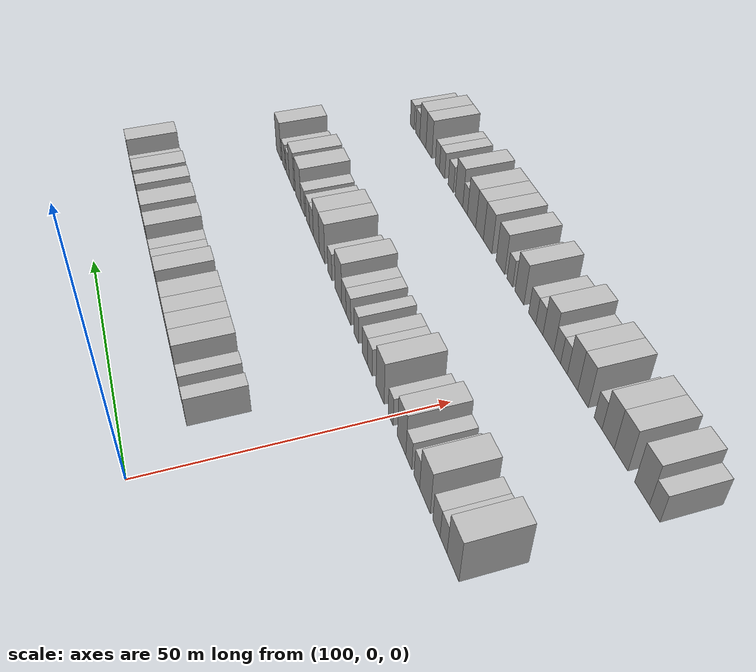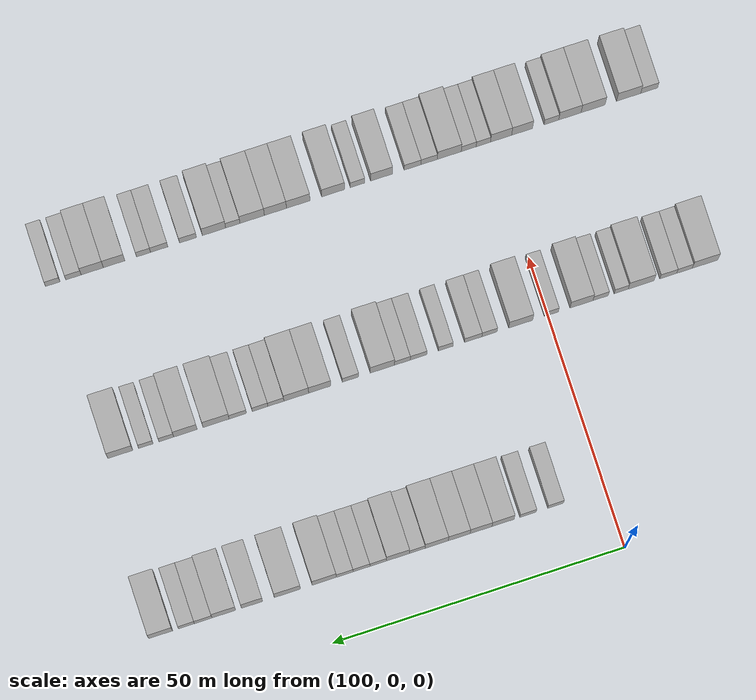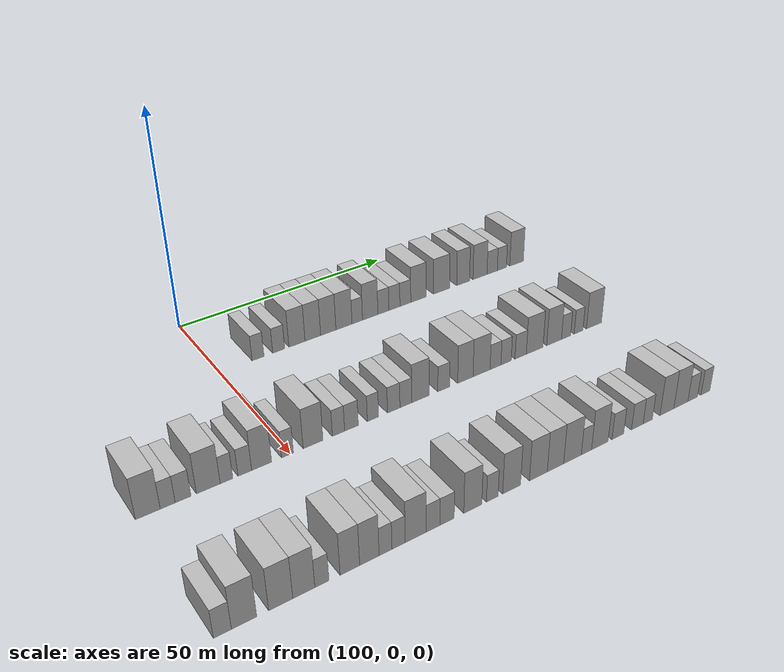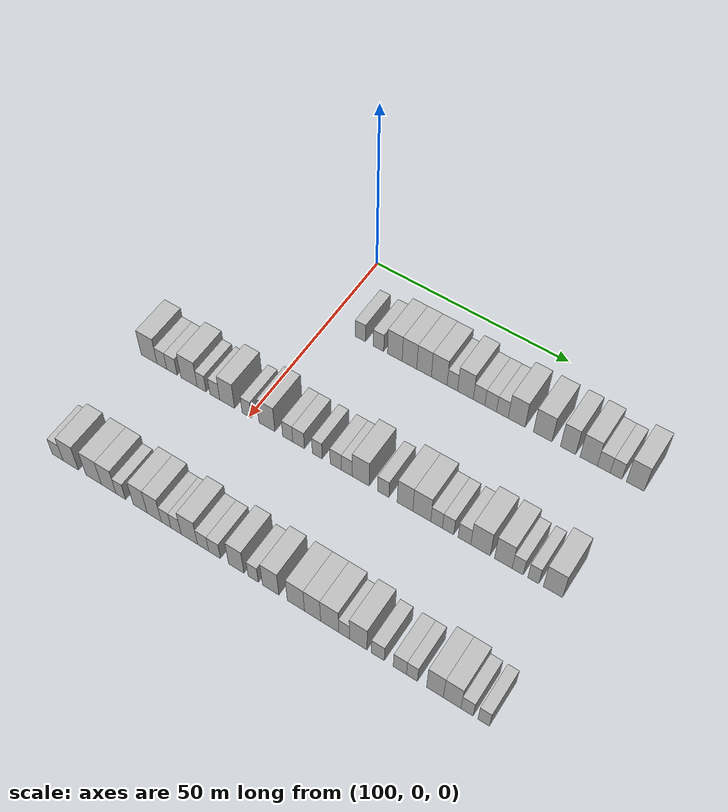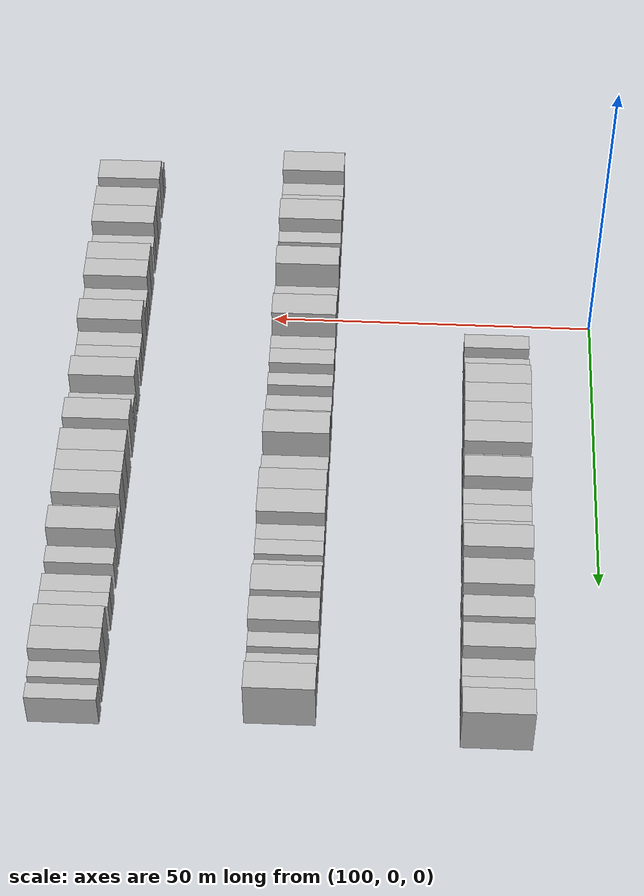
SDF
<sdf version="1.6">
 <world name="default">
  <model name="building_807">
   <static>1</static>
   <pose>115.0000 8.5581 0 0.000000 0.000000 0.000000</pose>
   <link name="link">
    <pose>0 0 3.00 0 0 0</pose>
    <collision name="collision"><geometry><box><size>10.0000 2.7011 6.0000</size></box></geometry></collision>
    <visual name="visual">
     <cast_shadows>0</cast_shadows>
     <geometry><box><size>10.0000 2.7011 6.0000</size></box></geometry>
     <material>
      <script>
       <uri>model://HANNAS_wall/materials/scripts</uri>
       <uri>model://HANNAS_wall/materials/textures</uri>
       <name>vrc/HANNAS_wall</name>
      </script>
     </material>
    </visual>
   </link>
  </model>
  <model name="building_808">
   <static>1</static>
   <pose>115.0000 13.2922 0 0.000000 0.000000 0.000000</pose>
   <link name="link">
    <pose>0 0 3.00 0 0 0</pose>
    <collision name="collision"><geometry><box><size>10.0000 2.7671 6.0000</size></box></geometry></collision>
    <visual name="visual">
     <cast_shadows>0</cast_shadows>
     <geometry><box><size>10.0000 2.7671 6.0000</size></box></geometry>
     <material>
      <script>
       <uri>model://HANNAS_wall/materials/scripts</uri>
       <uri>model://HANNAS_wall/materials/textures</uri>
       <name>vrc/HANNAS_wall</name>
      </script>
     </material>
    </visual>
   </link>
  </model>
  <model name="building_809">
   <static>1</static>
   <pose>115.0000 17.5745 0 0.000000 0.000000 0.000000</pose>
   <link name="link">
    <pose>0 0 4.50 0 0 0</pose>
    <collision name="collision"><geometry><box><size>10.0000 3.7975 9.0000</size></box></geometry></collision>
    <visual name="visual">
     <cast_shadows>0</cast_shadows>
     <geometry><box><size>10.0000 3.7975 9.0000</size></box></geometry>
     <material>
      <script>
       <uri>model://HANNAS_wall/materials/scripts</uri>
       <uri>model://HANNAS_wall/materials/textures</uri>
       <name>vrc/HANNAS_wall</name>
      </script>
     </material>
    </visual>
   </link>
  </model>
  <model name="building_810">
   <static>1</static>
   <pose>115.0000 21.3480 0 0.000000 0.000000 0.000000</pose>
   <link name="link">
    <pose>0 0 4.50 0 0 0</pose>
    <collision name="collision"><geometry><box><size>10.0000 3.7495 9.0000</size></box></geometry></collision>
    <visual name="visual">
     <cast_shadows>0</cast_shadows>
     <geometry><box><size>10.0000 3.7495 9.0000</size></box></geometry>
     <material>
      <script>
       <uri>model://HANNAS_wall/materials/scripts</uri>
       <uri>model://HANNAS_wall/materials/textures</uri>
       <name>vrc/HANNAS_wall</name>
      </script>
     </material>
    </visual>
   </link>
  </model>
  <model name="building_811">
   <static>1</static>
   <pose>115.0000 25.0889 0 0.000000 0.000000 0.000000</pose>
   <link name="link">
    <pose>0 0 4.50 0 0 0</pose>
    <collision name="collision"><geometry><box><size>10.0000 3.7324 9.0000</size></box></geometry></collision>
    <visual name="visual">
     <cast_shadows>0</cast_shadows>
     <geometry><box><size>10.0000 3.7324 9.0000</size></box></geometry>
     <material>
      <script>
       <uri>model://HANNAS_wall/materials/scripts</uri>
       <uri>model://HANNAS_wall/materials/textures</uri>
       <name>vrc/HANNAS_wall</name>
      </script>
     </material>
    </visual>
   </link>
  </model>
  <model name="building_812">
   <static>1</static>
   <pose>115.0000 28.9467 0 0.000000 0.000000 0.000000</pose>
   <link name="link">
    <pose>0 0 4.50 0 0 0</pose>
    <collision name="collision"><geometry><box><size>10.0000 3.9832 9.0000</size></box></geometry></collision>
    <visual name="visual">
     <cast_shadows>0</cast_shadows>
     <geometry><box><size>10.0000 3.9832 9.0000</size></box></geometry>
     <material>
      <script>
       <uri>model://HANNAS_wall/materials/scripts</uri>
       <uri>model://HANNAS_wall/materials/textures</uri>
       <name>vrc/HANNAS_wall</name>
      </script>
     </material>
    </visual>
   </link>
  </model>
  <model name="building_813">
   <static>1</static>
   <pose>115.0000 32.2671 0 0.000000 0.000000 0.000000</pose>
   <link name="link">
    <pose>0 0 3.00 0 0 0</pose>
    <collision name="collision"><geometry><box><size>10.0000 2.6576 6.0000</size></box></geometry></collision>
    <visual name="visual">
     <cast_shadows>0</cast_shadows>
     <geometry><box><size>10.0000 2.6576 6.0000</size></box></geometry>
     <material>
      <script>
       <uri>model://HANNAS_wall/materials/scripts</uri>
       <uri>model://HANNAS_wall/materials/textures</uri>
       <name>vrc/HANNAS_wall</name>
      </script>
     </material>
    </visual>
   </link>
  </model>
  <model name="building_814">
   <static>1</static>
   <pose>115.0000 35.5554 0 0.000000 0.000000 0.000000</pose>
   <link name="link">
    <pose>0 0 4.50 0 0 0</pose>
    <collision name="collision"><geometry><box><size>10.0000 3.9189 9.0000</size></box></geometry></collision>
    <visual name="visual">
     <cast_shadows>0</cast_shadows>
     <geometry><box><size>10.0000 3.9189 9.0000</size></box></geometry>
     <material>
      <script>
       <uri>model://HANNAS_wall/materials/scripts</uri>
       <uri>model://HANNAS_wall/materials/textures</uri>
       <name>vrc/HANNAS_wall</name>
      </script>
     </material>
    </visual>
   </link>
  </model>
  <model name="building_815">
   <static>1</static>
   <pose>115.0000 38.9462 0 0.000000 0.000000 0.000000</pose>
   <link name="link">
    <pose>0 0 3.00 0 0 0</pose>
    <collision name="collision"><geometry><box><size>10.0000 2.8628 6.0000</size></box></geometry></collision>
    <visual name="visual">
     <cast_shadows>0</cast_shadows>
     <geometry><box><size>10.0000 2.8628 6.0000</size></box></geometry>
     <material>
      <script>
       <uri>model://HANNAS_wall/materials/scripts</uri>
       <uri>model://HANNAS_wall/materials/textures</uri>
       <name>vrc/HANNAS_wall</name>
      </script>
     </material>
    </visual>
   </link>
  </model>
  <model name="building_816">
   <static>1</static>
   <pose>115.0000 41.8180 0 0.000000 0.000000 0.000000</pose>
   <link name="link">
    <pose>0 0 3.00 0 0 0</pose>
    <collision name="collision"><geometry><box><size>10.0000 2.8807 6.0000</size></box></geometry></collision>
    <visual name="visual">
     <cast_shadows>0</cast_shadows>
     <geometry><box><size>10.0000 2.8807 6.0000</size></box></geometry>
     <material>
      <script>
       <uri>model://HANNAS_wall/materials/scripts</uri>
       <uri>model://HANNAS_wall/materials/textures</uri>
       <name>vrc/HANNAS_wall</name>
      </script>
     </material>
    </visual>
   </link>
  </model>
  <model name="building_817">
   <static>1</static>
   <pose>115.0000 44.6970 0 0.000000 0.000000 0.000000</pose>
   <link name="link">
    <pose>0 0 3.00 0 0 0</pose>
    <collision name="collision"><geometry><box><size>10.0000 2.8773 6.0000</size></box></geometry></collision>
    <visual name="visual">
     <cast_shadows>0</cast_shadows>
     <geometry><box><size>10.0000 2.8773 6.0000</size></box></geometry>
     <material>
      <script>
       <uri>model://HANNAS_wall/materials/scripts</uri>
       <uri>model://HANNAS_wall/materials/textures</uri>
       <name>vrc/HANNAS_wall</name>
      </script>
     </material>
    </visual>
   </link>
  </model>
  <model name="building_818">
   <static>1</static>
   <pose>115.0000 48.1887 0 0.000000 0.000000 0.000000</pose>
   <link name="link">
    <pose>0 0 4.50 0 0 0</pose>
    <collision name="collision"><geometry><box><size>10.0000 4.1061 9.0000</size></box></geometry></collision>
    <visual name="visual">
     <cast_shadows>0</cast_shadows>
     <geometry><box><size>10.0000 4.1061 9.0000</size></box></geometry>
     <material>
      <script>
       <uri>model://HANNAS_wall/materials/scripts</uri>
       <uri>model://HANNAS_wall/materials/textures</uri>
       <name>vrc/HANNAS_wall</name>
      </script>
     </material>
    </visual>
   </link>
  </model>
  <model name="building_819">
   <static>1</static>
   <pose>115.0000 54.4717 0 0.000000 0.000000 0.000000</pose>
   <link name="link">
    <pose>0 0 4.50 0 0 0</pose>
    <collision name="collision"><geometry><box><size>10.0000 4.4599 9.0000</size></box></geometry></collision>
    <visual name="visual">
     <cast_shadows>0</cast_shadows>
     <geometry><box><size>10.0000 4.4599 9.0000</size></box></geometry>
     <material>
      <script>
       <uri>model://HANNAS_wall/materials/scripts</uri>
       <uri>model://HANNAS_wall/materials/textures</uri>
       <name>vrc/HANNAS_wall</name>
      </script>
     </material>
    </visual>
   </link>
  </model>
  <model name="building_820">
   <static>1</static>
   <pose>115.0000 60.5067 0 0.000000 0.000000 0.000000</pose>
   <link name="link">
    <pose>0 0 4.50 0 0 0</pose>
    <collision name="collision"><geometry><box><size>10.0000 3.6101 9.0000</size></box></geometry></collision>
    <visual name="visual">
     <cast_shadows>0</cast_shadows>
     <geometry><box><size>10.0000 3.6101 9.0000</size></box></geometry>
     <material>
      <script>
       <uri>model://HANNAS_wall/materials/scripts</uri>
       <uri>model://HANNAS_wall/materials/textures</uri>
       <name>vrc/HANNAS_wall</name>
      </script>
     </material>
    </visual>
   </link>
  </model>
  <model name="building_821">
   <static>1</static>
   <pose>115.0000 65.3345 0 0.000000 0.000000 0.000000</pose>
   <link name="link">
    <pose>0 0 4.50 0 0 0</pose>
    <collision name="collision"><geometry><box><size>10.0000 4.0454 9.0000</size></box></geometry></collision>
    <visual name="visual">
     <cast_shadows>0</cast_shadows>
     <geometry><box><size>10.0000 4.0454 9.0000</size></box></geometry>
     <material>
      <script>
       <uri>model://HANNAS_wall/materials/scripts</uri>
       <uri>model://HANNAS_wall/materials/textures</uri>
       <name>vrc/HANNAS_wall</name>
      </script>
     </material>
    </visual>
   </link>
  </model>
  <model name="building_822">
   <static>1</static>
   <pose>115.0000 68.8551 0 0.000000 0.000000 0.000000</pose>
   <link name="link">
    <pose>0 0 3.00 0 0 0</pose>
    <collision name="collision"><geometry><box><size>10.0000 2.9959 6.0000</size></box></geometry></collision>
    <visual name="visual">
     <cast_shadows>0</cast_shadows>
     <geometry><box><size>10.0000 2.9959 6.0000</size></box></geometry>
     <material>
      <script>
       <uri>model://HANNAS_wall/materials/scripts</uri>
       <uri>model://HANNAS_wall/materials/textures</uri>
       <name>vrc/HANNAS_wall</name>
      </script>
     </material>
    </visual>
   </link>
  </model>
  <model name="building_823">
   <static>1</static>
   <pose>115.0000 71.7139 0 0.000000 0.000000 0.000000</pose>
   <link name="link">
    <pose>0 0 3.00 0 0 0</pose>
    <collision name="collision"><geometry><box><size>10.0000 2.7216 6.0000</size></box></geometry></collision>
    <visual name="visual">
     <cast_shadows>0</cast_shadows>
     <geometry><box><size>10.0000 2.7216 6.0000</size></box></geometry>
     <material>
      <script>
       <uri>model://HANNAS_wall/materials/scripts</uri>
       <uri>model://HANNAS_wall/materials/textures</uri>
       <name>vrc/HANNAS_wall</name>
      </script>
     </material>
    </visual>
   </link>
  </model>
  <model name="building_824">
   <static>1</static>
   <pose>115.0000 76.1081 0 0.000000 0.000000 0.000000</pose>
   <link name="link">
    <pose>0 0 4.50 0 0 0</pose>
    <collision name="collision"><geometry><box><size>10.0000 4.0670 9.0000</size></box></geometry></collision>
    <visual name="visual">
     <cast_shadows>0</cast_shadows>
     <geometry><box><size>10.0000 4.0670 9.0000</size></box></geometry>
     <material>
      <script>
       <uri>model://HANNAS_wall/materials/scripts</uri>
       <uri>model://HANNAS_wall/materials/textures</uri>
       <name>vrc/HANNAS_wall</name>
      </script>
     </material>
    </visual>
   </link>
  </model>
  <model name="building_1024">
   <static>1</static>
   <pose>145.0000 -27.0491 0 0.000000 0.000000 0.000000</pose>
   <link name="link">
    <pose>0 0 4.50 0 0 0</pose>
    <collision name="collision"><geometry><box><size>10.0000 4.4079 9.0000</size></box></geometry></collision>
    <visual name="visual">
     <cast_shadows>0</cast_shadows>
     <geometry><box><size>10.0000 4.4079 9.0000</size></box></geometry>
     <material>
      <script>
       <uri>model://HANNAS_wall/materials/scripts</uri>
       <uri>model://HANNAS_wall/materials/textures</uri>
       <name>vrc/HANNAS_wall</name>
      </script>
     </material>
    </visual>
   </link>
  </model>
  <model name="building_1025">
   <static>1</static>
   <pose>145.0000 -23.5038 0 0.000000 0.000000 0.000000</pose>
   <link name="link">
    <pose>0 0 3.00 0 0 0</pose>
    <collision name="collision"><geometry><box><size>10.0000 2.6828 6.0000</size></box></geometry></collision>
    <visual name="visual">
     <cast_shadows>0</cast_shadows>
     <geometry><box><size>10.0000 2.6828 6.0000</size></box></geometry>
     <material>
      <script>
       <uri>model://HANNAS_wall/materials/scripts</uri>
       <uri>model://HANNAS_wall/materials/textures</uri>
       <name>vrc/HANNAS_wall</name>
      </script>
     </material>
    </visual>
   </link>
  </model>
  <model name="building_1026">
   <static>1</static>
   <pose>145.0000 -20.7197 0 0.000000 0.000000 0.000000</pose>
   <link name="link">
    <pose>0 0 3.00 0 0 0</pose>
    <collision name="collision"><geometry><box><size>10.0000 2.8853 6.0000</size></box></geometry></collision>
    <visual name="visual">
     <cast_shadows>0</cast_shadows>
     <geometry><box><size>10.0000 2.8853 6.0000</size></box></geometry>
     <material>
      <script>
       <uri>model://HANNAS_wall/materials/scripts</uri>
       <uri>model://HANNAS_wall/materials/textures</uri>
       <name>vrc/HANNAS_wall</name>
      </script>
     </material>
    </visual>
   </link>
  </model>
  <model name="building_1027">
   <static>1</static>
   <pose>145.0000 -16.0485 0 0.000000 0.000000 0.000000</pose>
   <link name="link">
    <pose>0 0 4.50 0 0 0</pose>
    <collision name="collision"><geometry><box><size>10.0000 4.4572 9.0000</size></box></geometry></collision>
    <visual name="visual">
     <cast_shadows>0</cast_shadows>
     <geometry><box><size>10.0000 4.4572 9.0000</size></box></geometry>
     <material>
      <script>
       <uri>model://HANNAS_wall/materials/scripts</uri>
       <uri>model://HANNAS_wall/materials/textures</uri>
       <name>vrc/HANNAS_wall</name>
      </script>
     </material>
    </visual>
   </link>
  </model>
  <model name="building_1028">
   <static>1</static>
   <pose>145.0000 -12.6143 0 0.000000 0.000000 0.000000</pose>
   <link name="link">
    <pose>0 0 3.00 0 0 0</pose>
    <collision name="collision"><geometry><box><size>10.0000 2.4112 6.0000</size></box></geometry></collision>
    <visual name="visual">
     <cast_shadows>0</cast_shadows>
     <geometry><box><size>10.0000 2.4112 6.0000</size></box></geometry>
     <material>
      <script>
       <uri>model://HANNAS_wall/materials/scripts</uri>
       <uri>model://HANNAS_wall/materials/textures</uri>
       <name>vrc/HANNAS_wall</name>
      </script>
     </material>
    </visual>
   </link>
  </model>
  <model name="building_1029">
   <static>1</static>
   <pose>145.0000 -9.0835 0 0.000000 0.000000 0.000000</pose>
   <link name="link">
    <pose>0 0 3.00 0 0 0</pose>
    <collision name="collision"><geometry><box><size>10.0000 2.6505 6.0000</size></box></geometry></collision>
    <visual name="visual">
     <cast_shadows>0</cast_shadows>
     <geometry><box><size>10.0000 2.6505 6.0000</size></box></geometry>
     <material>
      <script>
       <uri>model://HANNAS_wall/materials/scripts</uri>
       <uri>model://HANNAS_wall/materials/textures</uri>
       <name>vrc/HANNAS_wall</name>
      </script>
     </material>
    </visual>
   </link>
  </model>
  <model name="building_1030">
   <static>1</static>
   <pose>145.0000 -5.7899 0 0.000000 0.000000 0.000000</pose>
   <link name="link">
    <pose>0 0 4.50 0 0 0</pose>
    <collision name="collision"><geometry><box><size>10.0000 3.9365 9.0000</size></box></geometry></collision>
    <visual name="visual">
     <cast_shadows>0</cast_shadows>
     <geometry><box><size>10.0000 3.9365 9.0000</size></box></geometry>
     <material>
      <script>
       <uri>model://HANNAS_wall/materials/scripts</uri>
       <uri>model://HANNAS_wall/materials/textures</uri>
       <name>vrc/HANNAS_wall</name>
      </script>
     </material>
    </visual>
   </link>
  </model>
  <model name="building_1031">
   <static>1</static>
   <pose>145.0000 -0.6128 0 0.000000 0.000000 0.000000</pose>
   <link name="link">
    <pose>0 0 3.00 0 0 0</pose>
    <collision name="collision"><geometry><box><size>10.0000 2.4178 6.0000</size></box></geometry></collision>
    <visual name="visual">
     <cast_shadows>0</cast_shadows>
     <geometry><box><size>10.0000 2.4178 6.0000</size></box></geometry>
     <material>
      <script>
       <uri>model://HANNAS_wall/materials/scripts</uri>
       <uri>model://HANNAS_wall/materials/textures</uri>
       <name>vrc/HANNAS_wall</name>
      </script>
     </material>
    </visual>
   </link>
  </model>
  <model name="building_1032">
   <static>1</static>
   <pose>145.0000 4.6598 0 0.000000 0.000000 0.000000</pose>
   <link name="link">
    <pose>0 0 4.50 0 0 0</pose>
    <collision name="collision"><geometry><box><size>10.0000 4.1273 9.0000</size></box></geometry></collision>
    <visual name="visual">
     <cast_shadows>0</cast_shadows>
     <geometry><box><size>10.0000 4.1273 9.0000</size></box></geometry>
     <material>
      <script>
       <uri>model://HANNAS_wall/materials/scripts</uri>
       <uri>model://HANNAS_wall/materials/textures</uri>
       <name>vrc/HANNAS_wall</name>
      </script>
     </material>
    </visual>
   </link>
  </model>
  <model name="building_1033">
   <static>1</static>
   <pose>145.0000 10.0301 0 0.000000 0.000000 0.000000</pose>
   <link name="link">
    <pose>0 0 3.00 0 0 0</pose>
    <collision name="collision"><geometry><box><size>10.0000 2.6133 6.0000</size></box></geometry></collision>
    <visual name="visual">
     <cast_shadows>0</cast_shadows>
     <geometry><box><size>10.0000 2.6133 6.0000</size></box></geometry>
     <material>
      <script>
       <uri>model://HANNAS_wall/materials/scripts</uri>
       <uri>model://HANNAS_wall/materials/textures</uri>
       <name>vrc/HANNAS_wall</name>
      </script>
     </material>
    </visual>
   </link>
  </model>
  <model name="building_1034">
   <static>1</static>
   <pose>145.0000 12.8231 0 0.000000 0.000000 0.000000</pose>
   <link name="link">
    <pose>0 0 3.00 0 0 0</pose>
    <collision name="collision"><geometry><box><size>10.0000 2.9726 6.0000</size></box></geometry></collision>
    <visual name="visual">
     <cast_shadows>0</cast_shadows>
     <geometry><box><size>10.0000 2.9726 6.0000</size></box></geometry>
     <material>
      <script>
       <uri>model://HANNAS_wall/materials/scripts</uri>
       <uri>model://HANNAS_wall/materials/textures</uri>
       <name>vrc/HANNAS_wall</name>
      </script>
     </material>
    </visual>
   </link>
  </model>
  <model name="building_1035">
   <static>1</static>
   <pose>145.0000 17.5560 0 0.000000 0.000000 0.000000</pose>
   <link name="link">
    <pose>0 0 3.00 0 0 0</pose>
    <collision name="collision"><geometry><box><size>10.0000 2.4932 6.0000</size></box></geometry></collision>
    <visual name="visual">
     <cast_shadows>0</cast_shadows>
     <geometry><box><size>10.0000 2.4932 6.0000</size></box></geometry>
     <material>
      <script>
       <uri>model://HANNAS_wall/materials/scripts</uri>
       <uri>model://HANNAS_wall/materials/textures</uri>
       <name>vrc/HANNAS_wall</name>
      </script>
     </material>
    </visual>
   </link>
  </model>
  <model name="building_1036">
   <static>1</static>
   <pose>145.0000 22.2154 0 0.000000 0.000000 0.000000</pose>
   <link name="link">
    <pose>0 0 3.00 0 0 0</pose>
    <collision name="collision"><geometry><box><size>10.0000 2.8258 6.0000</size></box></geometry></collision>
    <visual name="visual">
     <cast_shadows>0</cast_shadows>
     <geometry><box><size>10.0000 2.8258 6.0000</size></box></geometry>
     <material>
      <script>
       <uri>model://HANNAS_wall/materials/scripts</uri>
       <uri>model://HANNAS_wall/materials/textures</uri>
       <name>vrc/HANNAS_wall</name>
      </script>
     </material>
    </visual>
   </link>
  </model>
  <model name="building_1037">
   <static>1</static>
   <pose>145.0000 24.9842 0 0.000000 0.000000 0.000000</pose>
   <link name="link">
    <pose>0 0 3.00 0 0 0</pose>
    <collision name="collision"><geometry><box><size>10.0000 2.7117 6.0000</size></box></geometry></collision>
    <visual name="visual">
     <cast_shadows>0</cast_shadows>
     <geometry><box><size>10.0000 2.7117 6.0000</size></box></geometry>
     <material>
      <script>
       <uri>model://HANNAS_wall/materials/scripts</uri>
       <uri>model://HANNAS_wall/materials/textures</uri>
       <name>vrc/HANNAS_wall</name>
      </script>
     </material>
    </visual>
   </link>
  </model>
  <model name="building_1038">
   <static>1</static>
   <pose>145.0000 28.4144 0 0.000000 0.000000 0.000000</pose>
   <link name="link">
    <pose>0 0 4.50 0 0 0</pose>
    <collision name="collision"><geometry><box><size>10.0000 4.1488 9.0000</size></box></geometry></collision>
    <visual name="visual">
     <cast_shadows>0</cast_shadows>
     <geometry><box><size>10.0000 4.1488 9.0000</size></box></geometry>
     <material>
      <script>
       <uri>model://HANNAS_wall/materials/scripts</uri>
       <uri>model://HANNAS_wall/materials/textures</uri>
       <name>vrc/HANNAS_wall</name>
      </script>
     </material>
    </visual>
   </link>
  </model>
  <model name="building_1039">
   <static>1</static>
   <pose>145.0000 33.8853 0 0.000000 0.000000 0.000000</pose>
   <link name="link">
    <pose>0 0 3.00 0 0 0</pose>
    <collision name="collision"><geometry><box><size>10.0000 2.7930 6.0000</size></box></geometry></collision>
    <visual name="visual">
     <cast_shadows>0</cast_shadows>
     <geometry><box><size>10.0000 2.7930 6.0000</size></box></geometry>
     <material>
      <script>
       <uri>model://HANNAS_wall/materials/scripts</uri>
       <uri>model://HANNAS_wall/materials/textures</uri>
       <name>vrc/HANNAS_wall</name>
      </script>
     </material>
    </visual>
   </link>
  </model>
  <model name="building_1040">
   <static>1</static>
   <pose>145.0000 39.1715 0 0.000000 0.000000 0.000000</pose>
   <link name="link">
    <pose>0 0 4.50 0 0 0</pose>
    <collision name="collision"><geometry><box><size>10.0000 3.7796 9.0000</size></box></geometry></collision>
    <visual name="visual">
     <cast_shadows>0</cast_shadows>
     <geometry><box><size>10.0000 3.7796 9.0000</size></box></geometry>
     <material>
      <script>
       <uri>model://HANNAS_wall/materials/scripts</uri>
       <uri>model://HANNAS_wall/materials/textures</uri>
       <name>vrc/HANNAS_wall</name>
      </script>
     </material>
    </visual>
   </link>
  </model>
  <model name="building_1041">
   <static>1</static>
   <pose>145.0000 43.1910 0 0.000000 0.000000 0.000000</pose>
   <link name="link">
    <pose>0 0 4.50 0 0 0</pose>
    <collision name="collision"><geometry><box><size>10.0000 4.2593 9.0000</size></box></geometry></collision>
    <visual name="visual">
     <cast_shadows>0</cast_shadows>
     <geometry><box><size>10.0000 4.2593 9.0000</size></box></geometry>
     <material>
      <script>
       <uri>model://HANNAS_wall/materials/scripts</uri>
       <uri>model://HANNAS_wall/materials/textures</uri>
       <name>vrc/HANNAS_wall</name>
      </script>
     </material>
    </visual>
   </link>
  </model>
  <model name="building_1042">
   <static>1</static>
   <pose>145.0000 46.6972 0 0.000000 0.000000 0.000000</pose>
   <link name="link">
    <pose>0 0 3.00 0 0 0</pose>
    <collision name="collision"><geometry><box><size>10.0000 2.7533 6.0000</size></box></geometry></collision>
    <visual name="visual">
     <cast_shadows>0</cast_shadows>
     <geometry><box><size>10.0000 2.7533 6.0000</size></box></geometry>
     <material>
      <script>
       <uri>model://HANNAS_wall/materials/scripts</uri>
       <uri>model://HANNAS_wall/materials/textures</uri>
       <name>vrc/HANNAS_wall</name>
      </script>
     </material>
    </visual>
   </link>
  </model>
  <model name="building_1043">
   <static>1</static>
   <pose>145.0000 49.4061 0 0.000000 0.000000 0.000000</pose>
   <link name="link">
    <pose>0 0 3.00 0 0 0</pose>
    <collision name="collision"><geometry><box><size>10.0000 2.6645 6.0000</size></box></geometry></collision>
    <visual name="visual">
     <cast_shadows>0</cast_shadows>
     <geometry><box><size>10.0000 2.6645 6.0000</size></box></geometry>
     <material>
      <script>
       <uri>model://HANNAS_wall/materials/scripts</uri>
       <uri>model://HANNAS_wall/materials/textures</uri>
       <name>vrc/HANNAS_wall</name>
      </script>
     </material>
    </visual>
   </link>
  </model>
  <model name="building_1044">
   <static>1</static>
   <pose>145.0000 53.2196 0 0.000000 0.000000 0.000000</pose>
   <link name="link">
    <pose>0 0 3.00 0 0 0</pose>
    <collision name="collision"><geometry><box><size>10.0000 2.9624 6.0000</size></box></geometry></collision>
    <visual name="visual">
     <cast_shadows>0</cast_shadows>
     <geometry><box><size>10.0000 2.9624 6.0000</size></box></geometry>
     <material>
      <script>
       <uri>model://HANNAS_wall/materials/scripts</uri>
       <uri>model://HANNAS_wall/materials/textures</uri>
       <name>vrc/HANNAS_wall</name>
      </script>
     </material>
    </visual>
   </link>
  </model>
  <model name="building_1045">
   <static>1</static>
   <pose>145.0000 56.9369 0 0.000000 0.000000 0.000000</pose>
   <link name="link">
    <pose>0 0 4.50 0 0 0</pose>
    <collision name="collision"><geometry><box><size>10.0000 4.4723 9.0000</size></box></geometry></collision>
    <visual name="visual">
     <cast_shadows>0</cast_shadows>
     <geometry><box><size>10.0000 4.4723 9.0000</size></box></geometry>
     <material>
      <script>
       <uri>model://HANNAS_wall/materials/scripts</uri>
       <uri>model://HANNAS_wall/materials/textures</uri>
       <name>vrc/HANNAS_wall</name>
      </script>
     </material>
    </visual>
   </link>
  </model>
  <model name="building_1046">
   <static>1</static>
   <pose>145.0000 62.1854 0 0.000000 0.000000 0.000000</pose>
   <link name="link">
    <pose>0 0 4.50 0 0 0</pose>
    <collision name="collision"><geometry><box><size>10.0000 4.0247 9.0000</size></box></geometry></collision>
    <visual name="visual">
     <cast_shadows>0</cast_shadows>
     <geometry><box><size>10.0000 4.0247 9.0000</size></box></geometry>
     <material>
      <script>
       <uri>model://HANNAS_wall/materials/scripts</uri>
       <uri>model://HANNAS_wall/materials/textures</uri>
       <name>vrc/HANNAS_wall</name>
      </script>
     </material>
    </visual>
   </link>
  </model>
  <model name="building_1047">
   <static>1</static>
   <pose>145.0000 65.4607 0 0.000000 0.000000 0.000000</pose>
   <link name="link">
    <pose>0 0 3.00 0 0 0</pose>
    <collision name="collision"><geometry><box><size>10.0000 2.5258 6.0000</size></box></geometry></collision>
    <visual name="visual">
     <cast_shadows>0</cast_shadows>
     <geometry><box><size>10.0000 2.5258 6.0000</size></box></geometry>
     <material>
      <script>
       <uri>model://HANNAS_wall/materials/scripts</uri>
       <uri>model://HANNAS_wall/materials/textures</uri>
       <name>vrc/HANNAS_wall</name>
      </script>
     </material>
    </visual>
   </link>
  </model>
  <model name="building_1048">
   <static>1</static>
   <pose>145.0000 68.9609 0 0.000000 0.000000 0.000000</pose>
   <link name="link">
    <pose>0 0 3.00 0 0 0</pose>
    <collision name="collision"><geometry><box><size>10.0000 2.4746 6.0000</size></box></geometry></collision>
    <visual name="visual">
     <cast_shadows>0</cast_shadows>
     <geometry><box><size>10.0000 2.4746 6.0000</size></box></geometry>
     <material>
      <script>
       <uri>model://HANNAS_wall/materials/scripts</uri>
       <uri>model://HANNAS_wall/materials/textures</uri>
       <name>vrc/HANNAS_wall</name>
      </script>
     </material>
    </visual>
   </link>
  </model>
  <model name="building_1049">
   <static>1</static>
   <pose>145.0000 73.3366 0 0.000000 0.000000 0.000000</pose>
   <link name="link">
    <pose>0 0 4.50 0 0 0</pose>
    <collision name="collision"><geometry><box><size>10.0000 4.2768 9.0000</size></box></geometry></collision>
    <visual name="visual">
     <cast_shadows>0</cast_shadows>
     <geometry><box><size>10.0000 4.2768 9.0000</size></box></geometry>
     <material>
      <script>
       <uri>model://HANNAS_wall/materials/scripts</uri>
       <uri>model://HANNAS_wall/materials/textures</uri>
       <name>vrc/HANNAS_wall</name>
      </script>
     </material>
    </visual>
   </link>
  </model>
  <model name="building_1247">
   <static>1</static>
   <pose>175.0000 -27.3976 0 0.000000 0.000000 0.000000</pose>
   <link name="link">
    <pose>0 0 3.00 0 0 0</pose>
    <collision name="collision"><geometry><box><size>10.0000 2.9143 6.0000</size></box></geometry></collision>
    <visual name="visual">
     <cast_shadows>0</cast_shadows>
     <geometry><box><size>10.0000 2.9143 6.0000</size></box></geometry>
     <material>
      <script>
       <uri>model://HANNAS_wall/materials/scripts</uri>
       <uri>model://HANNAS_wall/materials/textures</uri>
       <name>vrc/HANNAS_wall</name>
      </script>
     </material>
    </visual>
   </link>
  </model>
  <model name="building_1248">
   <static>1</static>
   <pose>175.0000 -23.8577 0 0.000000 0.000000 0.000000</pose>
   <link name="link">
    <pose>0 0 4.50 0 0 0</pose>
    <collision name="collision"><geometry><box><size>10.0000 4.1654 9.0000</size></box></geometry></collision>
    <visual name="visual">
     <cast_shadows>0</cast_shadows>
     <geometry><box><size>10.0000 4.1654 9.0000</size></box></geometry>
     <material>
      <script>
       <uri>model://HANNAS_wall/materials/scripts</uri>
       <uri>model://HANNAS_wall/materials/textures</uri>
       <name>vrc/HANNAS_wall</name>
      </script>
     </material>
    </visual>
   </link>
  </model>
  <model name="building_1249">
   <static>1</static>
   <pose>175.0000 -17.7099 0 0.000000 0.000000 0.000000</pose>
   <link name="link">
    <pose>0 0 4.50 0 0 0</pose>
    <collision name="collision"><geometry><box><size>10.0000 4.1302 9.0000</size></box></geometry></collision>
    <visual name="visual">
     <cast_shadows>0</cast_shadows>
     <geometry><box><size>10.0000 4.1302 9.0000</size></box></geometry>
     <material>
      <script>
       <uri>model://HANNAS_wall/materials/scripts</uri>
       <uri>model://HANNAS_wall/materials/textures</uri>
       <name>vrc/HANNAS_wall</name>
      </script>
     </material>
    </visual>
   </link>
  </model>
  <model name="building_1250">
   <static>1</static>
   <pose>175.0000 -13.7139 0 0.000000 0.000000 0.000000</pose>
   <link name="link">
    <pose>0 0 4.50 0 0 0</pose>
    <collision name="collision"><geometry><box><size>10.0000 3.8619 9.0000</size></box></geometry></collision>
    <visual name="visual">
     <cast_shadows>0</cast_shadows>
     <geometry><box><size>10.0000 3.8619 9.0000</size></box></geometry>
     <material>
      <script>
       <uri>model://HANNAS_wall/materials/scripts</uri>
       <uri>model://HANNAS_wall/materials/textures</uri>
       <name>vrc/HANNAS_wall</name>
      </script>
     </material>
    </visual>
   </link>
  </model>
  <model name="building_1251">
   <static>1</static>
   <pose>175.0000 -10.5218 0 0.000000 0.000000 0.000000</pose>
   <link name="link">
    <pose>0 0 3.00 0 0 0</pose>
    <collision name="collision"><geometry><box><size>10.0000 2.5223 6.0000</size></box></geometry></collision>
    <visual name="visual">
     <cast_shadows>0</cast_shadows>
     <geometry><box><size>10.0000 2.5223 6.0000</size></box></geometry>
     <material>
      <script>
       <uri>model://HANNAS_wall/materials/scripts</uri>
       <uri>model://HANNAS_wall/materials/textures</uri>
       <name>vrc/HANNAS_wall</name>
      </script>
     </material>
    </visual>
   </link>
  </model>
  <model name="building_1252">
   <static>1</static>
   <pose>175.0000 -5.4553 0 0.000000 0.000000 0.000000</pose>
   <link name="link">
    <pose>0 0 4.50 0 0 0</pose>
    <collision name="collision"><geometry><box><size>10.0000 3.6106 9.0000</size></box></geometry></collision>
    <visual name="visual">
     <cast_shadows>0</cast_shadows>
     <geometry><box><size>10.0000 3.6106 9.0000</size></box></geometry>
     <material>
      <script>
       <uri>model://HANNAS_wall/materials/scripts</uri>
       <uri>model://HANNAS_wall/materials/textures</uri>
       <name>vrc/HANNAS_wall</name>
      </script>
     </material>
    </visual>
   </link>
  </model>
  <model name="building_1253">
   <static>1</static>
   <pose>175.0000 -1.8271 0 0.000000 0.000000 0.000000</pose>
   <link name="link">
    <pose>0 0 4.50 0 0 0</pose>
    <collision name="collision"><geometry><box><size>10.0000 3.6458 9.0000</size></box></geometry></collision>
    <visual name="visual">
     <cast_shadows>0</cast_shadows>
     <geometry><box><size>10.0000 3.6458 9.0000</size></box></geometry>
     <material>
      <script>
       <uri>model://HANNAS_wall/materials/scripts</uri>
       <uri>model://HANNAS_wall/materials/textures</uri>
       <name>vrc/HANNAS_wall</name>
      </script>
     </material>
    </visual>
   </link>
  </model>
  <model name="building_1254">
   <static>1</static>
   <pose>175.0000 1.2281 0 0.000000 0.000000 0.000000</pose>
   <link name="link">
    <pose>0 0 3.00 0 0 0</pose>
    <collision name="collision"><geometry><box><size>10.0000 2.4646 6.0000</size></box></geometry></collision>
    <visual name="visual">
     <cast_shadows>0</cast_shadows>
     <geometry><box><size>10.0000 2.4646 6.0000</size></box></geometry>
     <material>
      <script>
       <uri>model://HANNAS_wall/materials/scripts</uri>
       <uri>model://HANNAS_wall/materials/textures</uri>
       <name>vrc/HANNAS_wall</name>
      </script>
     </material>
    </visual>
   </link>
  </model>
  <model name="building_1255">
   <static>1</static>
   <pose>175.0000 3.7436 0 0.000000 0.000000 0.000000</pose>
   <link name="link">
    <pose>0 0 3.00 0 0 0</pose>
    <collision name="collision"><geometry><box><size>10.0000 2.5663 6.0000</size></box></geometry></collision>
    <visual name="visual">
     <cast_shadows>0</cast_shadows>
     <geometry><box><size>10.0000 2.5663 6.0000</size></box></geometry>
     <material>
      <script>
       <uri>model://HANNAS_wall/materials/scripts</uri>
       <uri>model://HANNAS_wall/materials/textures</uri>
       <name>vrc/HANNAS_wall</name>
      </script>
     </material>
    </visual>
   </link>
  </model>
  <model name="building_1256">
   <static>1</static>
   <pose>175.0000 7.0907 0 0.000000 0.000000 0.000000</pose>
   <link name="link">
    <pose>0 0 4.50 0 0 0</pose>
    <collision name="collision"><geometry><box><size>10.0000 4.1280 9.0000</size></box></geometry></collision>
    <visual name="visual">
     <cast_shadows>0</cast_shadows>
     <geometry><box><size>10.0000 4.1280 9.0000</size></box></geometry>
     <material>
      <script>
       <uri>model://HANNAS_wall/materials/scripts</uri>
       <uri>model://HANNAS_wall/materials/textures</uri>
       <name>vrc/HANNAS_wall</name>
      </script>
     </material>
    </visual>
   </link>
  </model>
  <model name="building_1257">
   <static>1</static>
   <pose>175.0000 10.5530 0 0.000000 0.000000 0.000000</pose>
   <link name="link">
    <pose>0 0 3.00 0 0 0</pose>
    <collision name="collision"><geometry><box><size>10.0000 2.7966 6.0000</size></box></geometry></collision>
    <visual name="visual">
     <cast_shadows>0</cast_shadows>
     <geometry><box><size>10.0000 2.7966 6.0000</size></box></geometry>
     <material>
      <script>
       <uri>model://HANNAS_wall/materials/scripts</uri>
       <uri>model://HANNAS_wall/materials/textures</uri>
       <name>vrc/HANNAS_wall</name>
      </script>
     </material>
    </visual>
   </link>
  </model>
  <model name="building_1258">
   <static>1</static>
   <pose>175.0000 13.4014 0 0.000000 0.000000 0.000000</pose>
   <link name="link">
    <pose>0 0 3.00 0 0 0</pose>
    <collision name="collision"><geometry><box><size>10.0000 2.9001 6.0000</size></box></geometry></collision>
    <visual name="visual">
     <cast_shadows>0</cast_shadows>
     <geometry><box><size>10.0000 2.9001 6.0000</size></box></geometry>
     <material>
      <script>
       <uri>model://HANNAS_wall/materials/scripts</uri>
       <uri>model://HANNAS_wall/materials/textures</uri>
       <name>vrc/HANNAS_wall</name>
      </script>
     </material>
    </visual>
   </link>
  </model>
  <model name="building_1259">
   <static>1</static>
   <pose>175.0000 18.7401 0 0.000000 0.000000 0.000000</pose>
   <link name="link">
    <pose>0 0 4.50 0 0 0</pose>
    <collision name="collision"><geometry><box><size>10.0000 3.7773 9.0000</size></box></geometry></collision>
    <visual name="visual">
     <cast_shadows>0</cast_shadows>
     <geometry><box><size>10.0000 3.7773 9.0000</size></box></geometry>
     <material>
      <script>
       <uri>model://HANNAS_wall/materials/scripts</uri>
       <uri>model://HANNAS_wall/materials/textures</uri>
       <name>vrc/HANNAS_wall</name>
      </script>
     </material>
    </visual>
   </link>
  </model>
  <model name="building_1260">
   <static>1</static>
   <pose>175.0000 22.8779 0 0.000000 0.000000 0.000000</pose>
   <link name="link">
    <pose>0 0 3.00 0 0 0</pose>
    <collision name="collision"><geometry><box><size>10.0000 2.4982 6.0000</size></box></geometry></collision>
    <visual name="visual">
     <cast_shadows>0</cast_shadows>
     <geometry><box><size>10.0000 2.4982 6.0000</size></box></geometry>
     <material>
      <script>
       <uri>model://HANNAS_wall/materials/scripts</uri>
       <uri>model://HANNAS_wall/materials/textures</uri>
       <name>vrc/HANNAS_wall</name>
      </script>
     </material>
    </visual>
   </link>
  </model>
  <model name="building_1261">
   <static>1</static>
   <pose>175.0000 27.0952 0 0.000000 0.000000 0.000000</pose>
   <link name="link">
    <pose>0 0 4.50 0 0 0</pose>
    <collision name="collision"><geometry><box><size>10.0000 3.9366 9.0000</size></box></geometry></collision>
    <visual name="visual">
     <cast_shadows>0</cast_shadows>
     <geometry><box><size>10.0000 3.9366 9.0000</size></box></geometry>
     <material>
      <script>
       <uri>model://HANNAS_wall/materials/scripts</uri>
       <uri>model://HANNAS_wall/materials/textures</uri>
       <name>vrc/HANNAS_wall</name>
      </script>
     </material>
    </visual>
   </link>
  </model>
  <model name="building_1262">
   <static>1</static>
   <pose>175.0000 33.0915 0 0.000000 0.000000 0.000000</pose>
   <link name="link">
    <pose>0 0 4.50 0 0 0</pose>
    <collision name="collision"><geometry><box><size>10.0000 4.0560 9.0000</size></box></geometry></collision>
    <visual name="visual">
     <cast_shadows>0</cast_shadows>
     <geometry><box><size>10.0000 4.0560 9.0000</size></box></geometry>
     <material>
      <script>
       <uri>model://HANNAS_wall/materials/scripts</uri>
       <uri>model://HANNAS_wall/materials/textures</uri>
       <name>vrc/HANNAS_wall</name>
      </script>
     </material>
    </visual>
   </link>
  </model>
  <model name="building_1263">
   <static>1</static>
   <pose>175.0000 37.0174 0 0.000000 0.000000 0.000000</pose>
   <link name="link">
    <pose>0 0 4.50 0 0 0</pose>
    <collision name="collision"><geometry><box><size>10.0000 3.7958 9.0000</size></box></geometry></collision>
    <visual name="visual">
     <cast_shadows>0</cast_shadows>
     <geometry><box><size>10.0000 3.7958 9.0000</size></box></geometry>
     <material>
      <script>
       <uri>model://HANNAS_wall/materials/scripts</uri>
       <uri>model://HANNAS_wall/materials/textures</uri>
       <name>vrc/HANNAS_wall</name>
      </script>
     </material>
    </visual>
   </link>
  </model>
  <model name="building_1264">
   <static>1</static>
   <pose>175.0000 41.0140 0 0.000000 0.000000 0.000000</pose>
   <link name="link">
    <pose>0 0 4.50 0 0 0</pose>
    <collision name="collision"><geometry><box><size>10.0000 4.1974 9.0000</size></box></geometry></collision>
    <visual name="visual">
     <cast_shadows>0</cast_shadows>
     <geometry><box><size>10.0000 4.1974 9.0000</size></box></geometry>
     <material>
      <script>
       <uri>model://HANNAS_wall/materials/scripts</uri>
       <uri>model://HANNAS_wall/materials/textures</uri>
       <name>vrc/HANNAS_wall</name>
      </script>
     </material>
    </visual>
   </link>
  </model>
  <model name="building_1265">
   <static>1</static>
   <pose>175.0000 44.3445 0 0.000000 0.000000 0.000000</pose>
   <link name="link">
    <pose>0 0 3.00 0 0 0</pose>
    <collision name="collision"><geometry><box><size>10.0000 2.4638 6.0000</size></box></geometry></collision>
    <visual name="visual">
     <cast_shadows>0</cast_shadows>
     <geometry><box><size>10.0000 2.4638 6.0000</size></box></geometry>
     <material>
      <script>
       <uri>model://HANNAS_wall/materials/scripts</uri>
       <uri>model://HANNAS_wall/materials/textures</uri>
       <name>vrc/HANNAS_wall</name>
      </script>
     </material>
    </visual>
   </link>
  </model>
  <model name="building_1266">
   <static>1</static>
   <pose>175.0000 47.5846 0 0.000000 0.000000 0.000000</pose>
   <link name="link">
    <pose>0 0 4.50 0 0 0</pose>
    <collision name="collision"><geometry><box><size>10.0000 4.0165 9.0000</size></box></geometry></collision>
    <visual name="visual">
     <cast_shadows>0</cast_shadows>
     <geometry><box><size>10.0000 4.0165 9.0000</size></box></geometry>
     <material>
      <script>
       <uri>model://HANNAS_wall/materials/scripts</uri>
       <uri>model://HANNAS_wall/materials/textures</uri>
       <name>vrc/HANNAS_wall</name>
      </script>
     </material>
    </visual>
   </link>
  </model>
  <model name="building_1267">
   <static>1</static>
   <pose>175.0000 52.0511 0 0.000000 0.000000 0.000000</pose>
   <link name="link">
    <pose>0 0 3.00 0 0 0</pose>
    <collision name="collision"><geometry><box><size>10.0000 2.9164 6.0000</size></box></geometry></collision>
    <visual name="visual">
     <cast_shadows>0</cast_shadows>
     <geometry><box><size>10.0000 2.9164 6.0000</size></box></geometry>
     <material>
      <script>
       <uri>model://HANNAS_wall/materials/scripts</uri>
       <uri>model://HANNAS_wall/materials/textures</uri>
       <name>vrc/HANNAS_wall</name>
      </script>
     </material>
    </visual>
   </link>
  </model>
  <model name="building_1268">
   <static>1</static>
   <pose>175.0000 56.9944 0 0.000000 0.000000 0.000000</pose>
   <link name="link">
    <pose>0 0 3.00 0 0 0</pose>
    <collision name="collision"><geometry><box><size>10.0000 2.9703 6.0000</size></box></geometry></collision>
    <visual name="visual">
     <cast_shadows>0</cast_shadows>
     <geometry><box><size>10.0000 2.9703 6.0000</size></box></geometry>
     <material>
      <script>
       <uri>model://HANNAS_wall/materials/scripts</uri>
       <uri>model://HANNAS_wall/materials/textures</uri>
       <name>vrc/HANNAS_wall</name>
      </script>
     </material>
    </visual>
   </link>
  </model>
  <model name="building_1269">
   <static>1</static>
   <pose>175.0000 59.6905 0 0.000000 0.000000 0.000000</pose>
   <link name="link">
    <pose>0 0 3.00 0 0 0</pose>
    <collision name="collision"><geometry><box><size>10.0000 2.4220 6.0000</size></box></geometry></collision>
    <visual name="visual">
     <cast_shadows>0</cast_shadows>
     <geometry><box><size>10.0000 2.4220 6.0000</size></box></geometry>
     <material>
      <script>
       <uri>model://HANNAS_wall/materials/scripts</uri>
       <uri>model://HANNAS_wall/materials/textures</uri>
       <name>vrc/HANNAS_wall</name>
      </script>
     </material>
    </visual>
   </link>
  </model>
  <model name="building_1270">
   <static>1</static>
   <pose>175.0000 64.7408 0 0.000000 0.000000 0.000000</pose>
   <link name="link">
    <pose>0 0 4.50 0 0 0</pose>
    <collision name="collision"><geometry><box><size>10.0000 3.6785 9.0000</size></box></geometry></collision>
    <visual name="visual">
     <cast_shadows>0</cast_shadows>
     <geometry><box><size>10.0000 3.6785 9.0000</size></box></geometry>
     <material>
      <script>
       <uri>model://HANNAS_wall/materials/scripts</uri>
       <uri>model://HANNAS_wall/materials/textures</uri>
       <name>vrc/HANNAS_wall</name>
      </script>
     </material>
    </visual>
   </link>
  </model>
  <model name="building_1271">
   <static>1</static>
   <pose>175.0000 68.4861 0 0.000000 0.000000 0.000000</pose>
   <link name="link">
    <pose>0 0 4.50 0 0 0</pose>
    <collision name="collision"><geometry><box><size>10.0000 3.8121 9.0000</size></box></geometry></collision>
    <visual name="visual">
     <cast_shadows>0</cast_shadows>
     <geometry><box><size>10.0000 3.8121 9.0000</size></box></geometry>
     <material>
      <script>
       <uri>model://HANNAS_wall/materials/scripts</uri>
       <uri>model://HANNAS_wall/materials/textures</uri>
       <name>vrc/HANNAS_wall</name>
      </script>
     </material>
    </visual>
   </link>
  </model>
  <model name="building_1272">
   <static>1</static>
   <pose>175.0000 71.7104 0 0.000000 0.000000 0.000000</pose>
   <link name="link">
    <pose>0 0 3.00 0 0 0</pose>
    <collision name="collision"><geometry><box><size>10.0000 2.6366 6.0000</size></box></geometry></collision>
    <visual name="visual">
     <cast_shadows>0</cast_shadows>
     <geometry><box><size>10.0000 2.6366 6.0000</size></box></geometry>
     <material>
      <script>
       <uri>model://HANNAS_wall/materials/scripts</uri>
       <uri>model://HANNAS_wall/materials/textures</uri>
       <name>vrc/HANNAS_wall</name>
      </script>
     </material>
    </visual>
   </link>
  </model>
  <model name="building_1273">
   <static>1</static>
   <pose>175.0000 75.2632 0 0.000000 0.000000 0.000000</pose>
   <link name="link">
    <pose>0 0 3.00 0 0 0</pose>
    <collision name="collision"><geometry><box><size>10.0000 2.4689 6.0000</size></box></geometry></collision>
    <visual name="visual">
     <cast_shadows>0</cast_shadows>
     <geometry><box><size>10.0000 2.4689 6.0000</size></box></geometry>
     <material>
      <script>
       <uri>model://HANNAS_wall/materials/scripts</uri>
       <uri>model://HANNAS_wall/materials/textures</uri>
       <name>vrc/HANNAS_wall</name>
      </script>
     </material>
    </visual>
   </link>
  </model>
 </world>
</sdf>
